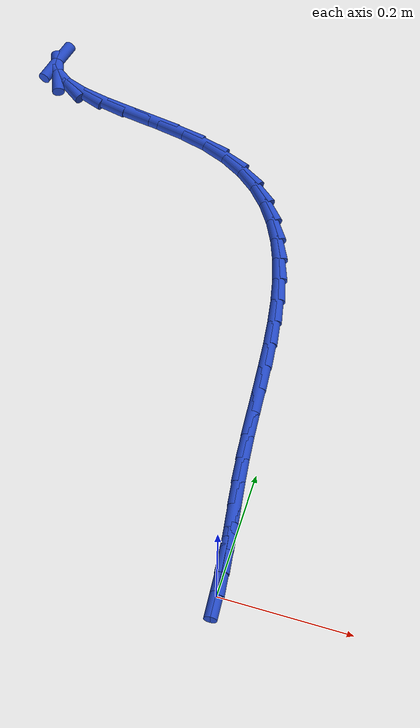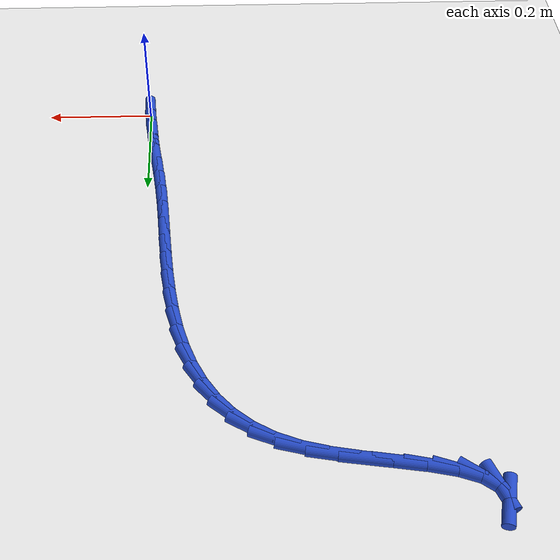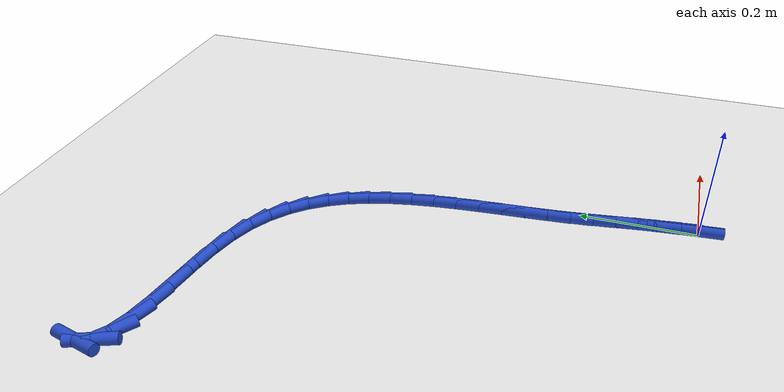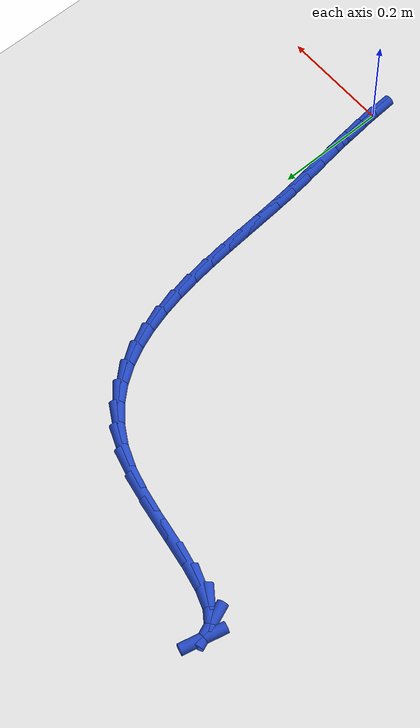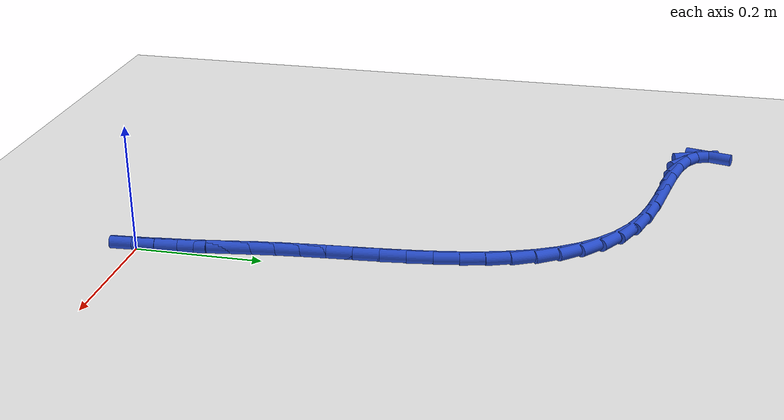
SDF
<sdf version="1.6">
 <world name="default">
  <model name="ground_plane">
   <static>1</static>
   <link name="link">
    <collision name="collision">
     <geometry><plane><normal>0 0 1</normal><size>100 100</size></plane></geometry>
     <surface><friction><ode><mu>100</mu><mu2>50</mu2></ode></friction></surface>
    </collision>
    <visual name="visual">
     <cast_shadows>0</cast_shadows>
     <geometry><plane><normal>0 0 1</normal><size>100 100</size></plane></geometry>
     <material>
      <script><uri>file://media/materials/scripts/gazebo.material</uri><name>Gazebo/WhiteGlow</name></script>
     </material>
    </visual>
   </link>
  </model>
  <model name="line">
   <link name="link_0">
    <pose>-3.122502256758253e-17 8.326672684688674e-17 0.01 0 1.57 -1.5030407779389605</pose>
    <collision name="collision">
     <geometry><cylinder><radius>0.01</radius><length>0.08</length></cylinder></geometry>
    </collision>
    <visual name="visual">
     <material>
      <script><name>Gazebo/Blue</name><uri>file://media/materials/scripts/gazebo.material</uri></script>
     </material>
     <geometry><cylinder><radius>0.01</radius><length>0.08</length></cylinder></geometry>
    </visual>
   </link>
   <link name="link_1">
    <pose>-0.002415050710651432 0.03558902461273474 0.01 0 1.57 -1.4665003694563987</pose>
    <collision name="collision">
     <geometry><cylinder><radius>0.01</radius><length>0.08</length></cylinder></geometry>
    </collision>
    <visual name="visual">
     <material>
      <script><name>Gazebo/Blue</name><uri>file://media/materials/scripts/gazebo.material</uri></script>
     </material>
     <geometry><cylinder><radius>0.01</radius><length>0.08</length></cylinder></geometry>
    </visual>
   </link>
   <link name="link_2">
    <pose>-0.006111138607291392 0.07089889359107344 0.01 0 1.57 -1.442517594841231</pose>
    <collision name="collision">
     <geometry><cylinder><radius>0.01</radius><length>0.08</length></cylinder></geometry>
    </collision>
    <visual name="visual">
     <material>
      <script><name>Gazebo/Blue</name><uri>file://media/materials/scripts/gazebo.material</uri></script>
     </material>
     <geometry><cylinder><radius>0.01</radius><length>0.08</length></cylinder></geometry>
    </visual>
   </link>
   <link name="link_3">
    <pose>-0.01066798711388269 0.10622685483960265 0.01 0 1.57 -1.4315003370076975</pose>
    <collision name="collision">
     <geometry><cylinder><radius>0.01</radius><length>0.08</length></cylinder></geometry>
    </collision>
    <visual name="visual">
     <material>
      <script><name>Gazebo/Blue</name><uri>file://media/materials/scripts/gazebo.material</uri></script>
     </material>
     <geometry><cylinder><radius>0.01</radius><length>0.08</length></cylinder></geometry>
    </visual>
   </link>
   <link name="link_4">
    <pose>-0.015665319654388124 0.14187015626290891 0.01 0 1.57 -1.4332774170633384</pose>
    <collision name="collision">
     <geometry><cylinder><radius>0.01</radius><length>0.08</length></cylinder></geometry>
    </collision>
    <visual name="visual">
     <material>
      <script><name>Gazebo/Blue</name><uri>file://media/materials/scripts/gazebo.material</uri></script>
     </material>
     <geometry><cylinder><radius>0.01</radius><length>0.08</length></cylinder></geometry>
    </visual>
   </link>
   <link name="link_5">
    <pose>-0.020682859652770474 0.17812604576557875 0.01 0 1.57 -1.4471896794429266</pose>
    <collision name="collision">
     <geometry><cylinder><radius>0.01</radius><length>0.08</length></cylinder></geometry>
    </collision>
    <visual name="visual">
     <material>
      <script><name>Gazebo/Blue</name><uri>file://media/materials/scripts/gazebo.material</uri></script>
     </material>
     <geometry><cylinder><radius>0.01</radius><length>0.08</length></cylinder></geometry>
    </visual>
   </link>
   <link name="link_6">
    <pose>-0.02530033053299255 0.2152917712521987 0.01 0 1.57 -1.4713167224160402</pose>
    <collision name="collision">
     <geometry><cylinder><radius>0.01</radius><length>0.08</length></cylinder></geometry>
    </collision>
    <visual name="visual">
     <material>
      <script><name>Gazebo/Blue</name><uri>file://media/materials/scripts/gazebo.material</uri></script>
     </material>
     <geometry><cylinder><radius>0.01</radius><length>0.08</length></cylinder></geometry>
    </visual>
   </link>
   <link name="link_7">
    <pose>-0.0291279117036364 0.2536408046802877 0.01 0 1.57 -1.492112859820639</pose>
    <collision name="collision">
     <geometry><cylinder><radius>0.01</radius><length>0.08</length></cylinder></geometry>
    </collision>
    <visual name="visual">
     <material>
      <script><name>Gazebo/Blue</name><uri>file://media/materials/scripts/gazebo.material</uri></script>
     </material>
     <geometry><cylinder><radius>0.01</radius><length>0.08</length></cylinder></geometry>
    </visual>
   </link>
   <link name="link_8">
    <pose>-0.032238000089553284 0.2930857805779441 0.01 0 1.57 -1.500611982437879</pose>
    <collision name="collision">
     <geometry><cylinder><radius>0.01</radius><length>0.08</length></cylinder></geometry>
    </collision>
    <visual name="visual">
     <material>
      <script><name>Gazebo/Blue</name><uri>file://media/materials/scripts/gazebo.material</uri></script>
     </material>
     <geometry><cylinder><radius>0.01</radius><length>0.08</length></cylinder></geometry>
    </visual>
   </link>
   <link name="link_9">
    <pose>-0.03506216555849448 0.33325893942312346 0.01 0 1.57 -1.4974142484269624</pose>
    <collision name="collision">
     <geometry><cylinder><radius>0.01</radius><length>0.08</length></cylinder></geometry>
    </collision>
    <visual name="visual">
     <material>
      <script><name>Gazebo/Blue</name><uri>file://media/materials/scripts/gazebo.material</uri></script>
     </material>
     <geometry><cylinder><radius>0.01</radius><length>0.08</length></cylinder></geometry>
    </visual>
   </link>
   <link name="link_10">
    <pose>-0.03804141315734557 0.3737851559716594 0.01 0 1.57 -1.482753693875373</pose>
    <collision name="collision">
     <geometry><cylinder><radius>0.01</radius><length>0.08</length></cylinder></geometry>
    </collision>
    <visual name="visual">
     <material>
      <script><name>Gazebo/Blue</name><uri>file://media/materials/scripts/gazebo.material</uri></script>
     </material>
     <geometry><cylinder><radius>0.01</radius><length>0.08</length></cylinder></geometry>
    </visual>
   </link>
   <link name="link_11">
    <pose>-0.04161674793299211 0.4142893049793852 0.01 0 1.57 -1.4562961739968132</pose>
    <collision name="collision">
     <geometry><cylinder><radius>0.01</radius><length>0.08</length></cylinder></geometry>
    </collision>
    <visual name="visual">
     <material>
      <script><name>Gazebo/Blue</name><uri>file://media/materials/scripts/gazebo.material</uri></script>
     </material>
     <geometry><cylinder><radius>0.01</radius><length>0.08</length></cylinder></geometry>
    </visual>
   </link>
   <link name="link_12">
    <pose>-0.046229174932319594 0.45439626120213383 0.01 0 1.57 -1.4171775455345788</pose>
    <collision name="collision">
     <geometry><cylinder><radius>0.01</radius><length>0.08</length></cylinder></geometry>
    </collision>
    <visual name="visual">
     <material>
      <script><name>Gazebo/Blue</name><uri>file://media/materials/scripts/gazebo.material</uri></script>
     </material>
     <geometry><cylinder><radius>0.01</radius><length>0.08</length></cylinder></geometry>
    </visual>
   </link>
   <link name="link_13">
    <pose>-0.052319699202213604 0.493730899395739 0.01 0 1.57 -1.364047035410262</pose>
    <collision name="collision">
     <geometry><cylinder><radius>0.01</radius><length>0.08</length></cylinder></geometry>
    </collision>
    <visual name="visual">
     <material>
      <script><name>Gazebo/Blue</name><uri>file://media/materials/scripts/gazebo.material</uri></script>
     </material>
     <geometry><cylinder><radius>0.01</radius><length>0.08</length></cylinder></geometry>
    </visual>
   </link>
   <link name="link_14">
    <pose>-0.06032932578955969 0.531918094316034 0.01 0 1.57 -1.295168387860842</pose>
    <collision name="collision">
     <geometry><cylinder><radius>0.01</radius><length>0.08</length></cylinder></geometry>
    </collision>
    <visual name="visual">
     <material>
      <script><name>Gazebo/Blue</name><uri>file://media/materials/scripts/gazebo.material</uri></script>
     </material>
     <geometry><cylinder><radius>0.01</radius><length>0.08</length></cylinder></geometry>
    </visual>
   </link>
   <link name="link_15">
    <pose>-0.0706990597412434 0.5685827207188522 0.01 0 1.57 -1.2086698382049734</pose>
    <collision name="collision">
     <geometry><cylinder><radius>0.01</radius><length>0.08</length></cylinder></geometry>
    </collision>
    <visual name="visual">
     <material>
      <script><name>Gazebo/Blue</name><uri>file://media/materials/scripts/gazebo.material</uri></script>
     </material>
     <geometry><cylinder><radius>0.01</radius><length>0.08</length></cylinder></geometry>
    </visual>
   </link>
   <link name="link_16">
    <pose>-0.08386990610415024 0.6033496533600268 0.01 0 1.57 -1.1030724608693272</pose>
    <collision name="collision">
     <geometry><cylinder><radius>0.01</radius><length>0.08</length></cylinder></geometry>
    </collision>
    <visual name="visual">
     <material>
      <script><name>Gazebo/Blue</name><uri>file://media/materials/scripts/gazebo.material</uri></script>
     </material>
     <geometry><cylinder><radius>0.01</radius><length>0.08</length></cylinder></geometry>
    </visual>
   </link>
   <link name="link_17">
    <pose>-0.10028286992516583 0.6358437669953914 0.01 0 1.57 -0.9782002376338371</pose>
    <collision name="collision">
     <geometry><cylinder><radius>0.01</radius><length>0.08</length></cylinder></geometry>
    </collision>
    <visual name="visual">
     <material>
      <script><name>Gazebo/Blue</name><uri>file://media/materials/scripts/gazebo.material</uri></script>
     </material>
     <geometry><cylinder><radius>0.01</radius><length>0.08</length></cylinder></geometry>
    </visual>
   </link>
   <link name="link_18">
    <pose>-0.12037895625117563 0.665689936380779 0.01 0 1.57 -0.8363477039472466</pose>
    <collision name="collision">
     <geometry><cylinder><radius>0.01</radius><length>0.08</length></cylinder></geometry>
    </collision>
    <visual name="visual">
     <material>
      <script><name>Gazebo/Blue</name><uri>file://media/materials/scripts/gazebo.material</uri></script>
     </material>
     <geometry><cylinder><radius>0.01</radius><length>0.08</length></cylinder></geometry>
    </visual>
   </link>
   <link name="link_19">
    <pose>-0.1445991701290653 0.6925130362720234 0.01 0 1.57 -0.6830863710594951</pose>
    <collision name="collision">
     <geometry><cylinder><radius>0.01</radius><length>0.08</length></cylinder></geometry>
    </collision>
    <visual name="visual">
     <material>
      <script><name>Gazebo/Blue</name><uri>file://media/materials/scripts/gazebo.material</uri></script>
     </material>
     <geometry><cylinder><radius>0.01</radius><length>0.08</length></cylinder></geometry>
    </visual>
   </link>
   <link name="link_20">
    <pose>-0.17338451660572024 0.7159379414249577 0.01 0 1.57 -0.5267461093109288</pose>
    <collision name="collision">
     <geometry><cylinder><radius>0.01</radius><length>0.08</length></cylinder></geometry>
    </collision>
    <visual name="visual">
     <material>
      <script><name>Gazebo/Blue</name><uri>file://media/materials/scripts/gazebo.material</uri></script>
     </material>
     <geometry><cylinder><radius>0.01</radius><length>0.08</length></cylinder></geometry>
    </visual>
   </link>
   <link name="link_21">
    <pose>-0.20717600072802617 0.7355895265954151 0.01 0 1.57 -0.3762813209090379</pose>
    <collision name="collision">
     <geometry><cylinder><radius>0.01</radius><length>0.08</length></cylinder></geometry>
    </collision>
    <visual name="visual">
     <material>
      <script><name>Gazebo/Blue</name><uri>file://media/materials/scripts/gazebo.material</uri></script>
     </material>
     <geometry><cylinder><radius>0.01</radius><length>0.08</length></cylinder></geometry>
    </visual>
   </link>
   <link name="link_22">
    <pose>-0.24641429832178813 0.7510928594967353 0.01 0 1.57 -0.2504060085251132</pose>
    <collision name="collision">
     <geometry><cylinder><radius>0.01</radius><length>0.08</length></cylinder></geometry>
    </collision>
    <visual name="visual">
     <material>
      <script><name>Gazebo/Blue</name><uri>file://media/materials/scripts/gazebo.material</uri></script>
     </material>
     <geometry><cylinder><radius>0.01</radius><length>0.08</length></cylinder></geometry>
    </visual>
   </link>
   <link name="link_23">
    <pose>-0.2908726784310996 0.7624641770464414 0.01 0 1.57 -0.17683478753055085</pose>
    <collision name="collision">
     <geometry><cylinder><radius>0.01</radius><length>0.08</length></cylinder></geometry>
    </collision>
    <visual name="visual">
     <material>
      <script><name>Gazebo/Blue</name><uri>file://media/materials/scripts/gazebo.material</uri></script>
     </material>
     <geometry><cylinder><radius>0.01</radius><length>0.08</length></cylinder></geometry>
    </visual>
   </link>
   <link name="link_24">
    <pose>-0.3382564914490906 0.7709317297573361 0.01 0 1.57 -0.14650194255312052</pose>
    <collision name="collision">
     <geometry><cylinder><radius>0.01</radius><length>0.08</length></cylinder></geometry>
    </collision>
    <visual name="visual">
     <material>
      <script><name>Gazebo/Blue</name><uri>file://media/materials/scripts/gazebo.material</uri></script>
     </material>
     <geometry><cylinder><radius>0.01</radius><length>0.08</length></cylinder></geometry>
    </visual>
   </link>
   <link name="link_25">
    <pose>-0.3858717842939554 0.7779578011589641 0.01 0 1.57 -0.15481828259234995</pose>
    <collision name="collision">
     <geometry><cylinder><radius>0.01</radius><length>0.08</length></cylinder></geometry>
    </collision>
    <visual name="visual">
     <material>
      <script><name>Gazebo/Blue</name><uri>file://media/materials/scripts/gazebo.material</uri></script>
     </material>
     <geometry><cylinder><radius>0.01</radius><length>0.08</length></cylinder></geometry>
    </visual>
   </link>
   <link name="link_26">
    <pose>-0.43102460388388847 0.7850046747808693 0.01 0 1.57 -0.21012030153353362</pose>
    <collision name="collision">
     <geometry><cylinder><radius>0.01</radius><length>0.08</length></cylinder></geometry>
    </collision>
    <visual name="visual">
     <material>
      <script><name>Gazebo/Blue</name><uri>file://media/materials/scripts/gazebo.material</uri></script>
     </material>
     <geometry><cylinder><radius>0.01</radius><length>0.08</length></cylinder></geometry>
    </visual>
   </link>
   <link name="link_27">
    <pose>-0.47102099713708523 0.7935346341525976 0.01 0 1.57 -0.3428752116892714</pose>
    <collision name="collision">
     <geometry><cylinder><radius>0.01</radius><length>0.08</length></cylinder></geometry>
    </collision>
    <visual name="visual">
     <material>
      <script><name>Gazebo/Blue</name><uri>file://media/materials/scripts/gazebo.material</uri></script>
     </material>
     <geometry><cylinder><radius>0.01</radius><length>0.08</length></cylinder></geometry>
    </visual>
   </link>
   <link name="link_28">
    <pose>-0.5031670109717399 0.8050099628036931 0.01 0 1.57 -0.6340044579413768</pose>
    <collision name="collision">
     <geometry><cylinder><radius>0.01</radius><length>0.08</length></cylinder></geometry>
    </collision>
    <visual name="visual">
     <material>
      <script><name>Gazebo/Blue</name><uri>file://media/materials/scripts/gazebo.material</uri></script>
     </material>
     <geometry><cylinder><radius>0.01</radius><length>0.08</length></cylinder></geometry>
    </visual>
   </link>
   <link name="link_29">
    <pose>-0.5247686923060474 0.8208929442637007 0.01 0 1.57 -1.203747088177911</pose>
    <collision name="collision">
     <geometry><cylinder><radius>0.01</radius><length>0.08</length></cylinder></geometry>
    </collision>
    <visual name="visual">
     <material>
      <script><name>Gazebo/Blue</name><uri>file://media/materials/scripts/gazebo.material</uri></script>
     </material>
     <geometry><cylinder><radius>0.01</radius><length>0.08</length></cylinder></geometry>
    </visual>
   </link>
   <link name="link_30">
    <pose>-0.5331320880582021 0.842645862062165 0.01 0 1.57 1.3257189093136208</pose>
    <collision name="collision">
     <geometry><cylinder><radius>0.01</radius><length>0.08</length></cylinder></geometry>
    </collision>
    <visual name="visual">
     <material>
      <script><name>Gazebo/Blue</name><uri>file://media/materials/scripts/gazebo.material</uri></script>
     </material>
     <geometry><cylinder><radius>0.01</radius><length>0.08</length></cylinder></geometry>
    </visual>
   </link>
   <link name="link_270">
    <pose>-2.42861286636753e-17 3.5388358909926865e-16 0.01 0 1.57 -1.501176795318514</pose>
    <collision name="collision">
     <geometry><cylinder><radius>0.01</radius><length>0.08</length></cylinder></geometry>
    </collision>
    <visual name="visual">
     <material>
      <script><name>Gazebo/Blue</name><uri>file://media/materials/scripts/gazebo.material</uri></script>
     </material>
     <geometry><cylinder><radius>0.01</radius><length>0.08</length></cylinder></geometry>
    </visual>
   </link>
   <link name="link_271">
    <pose>-0.002475425222385183 0.035499011768295535 0.01 0 1.57 -1.4525860269942255</pose>
    <collision name="collision">
     <geometry><cylinder><radius>0.01</radius><length>0.08</length></cylinder></geometry>
    </collision>
    <visual name="visual">
     <material>
      <script><name>Gazebo/Blue</name><uri>file://media/materials/scripts/gazebo.material</uri></script>
     </material>
     <geometry><cylinder><radius>0.01</radius><length>0.08</length></cylinder></geometry>
    </visual>
   </link>
   <link name="link_272">
    <pose>-0.006594134701161112 0.07017879083555428 0.01 0 1.57 -1.4771094652373156</pose>
    <collision name="collision">
     <geometry><cylinder><radius>0.01</radius><length>0.08</length></cylinder></geometry>
    </collision>
    <visual name="visual">
     <material>
      <script><name>Gazebo/Blue</name><uri>file://media/materials/scripts/gazebo.material</uri></script>
     </material>
     <geometry><cylinder><radius>0.01</radius><length>0.08</length></cylinder></geometry>
    </visual>
   </link>
  </model>
 </world>
</sdf>
